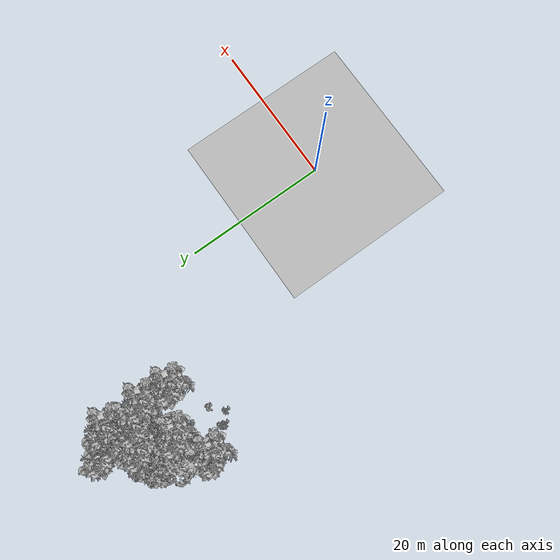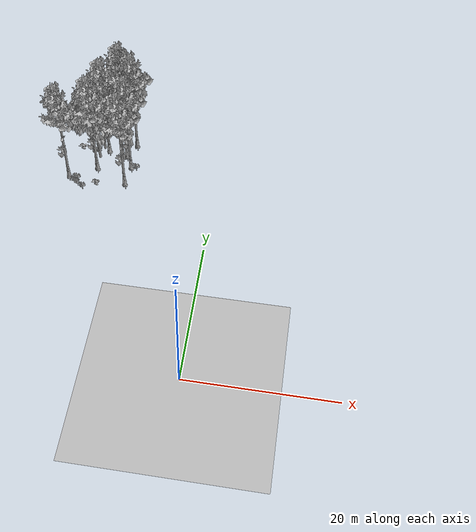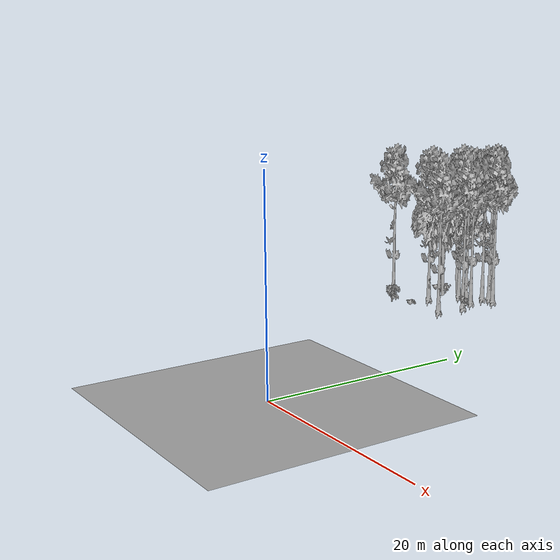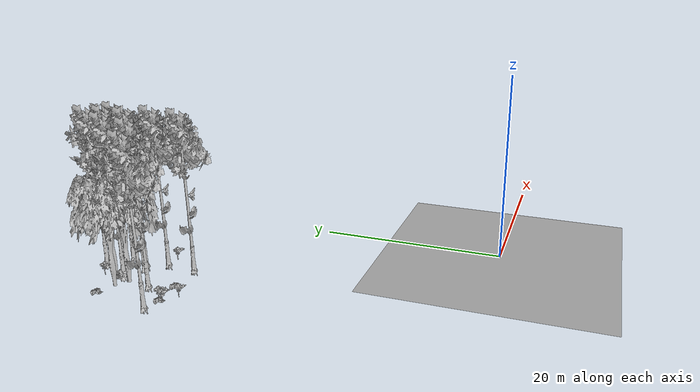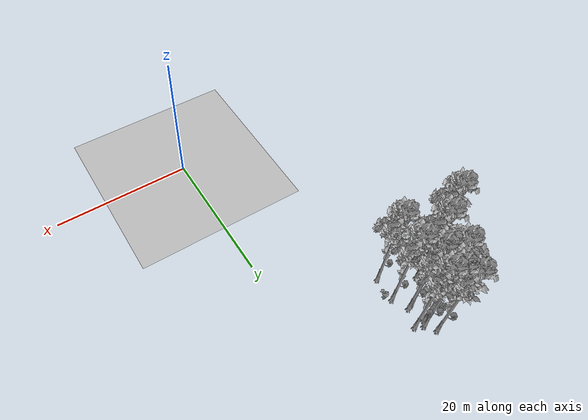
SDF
<sdf version="1.7">
 <world name="default">
  <model name="ground_plane">
   <static>1</static>
   <link name="link">
    <collision name="collision">
     <pose>-50 0 0 0 -0 0</pose>
     <geometry><plane><normal>0 0 1</normal><size>80 80</size></plane></geometry>
     <surface><contact><ode><min_depth>0.01</min_depth><max_vel>0</max_vel></ode></contact></surface>
    </collision>
    <visual name="grass">
     <cast_shadows>0</cast_shadows>
     <geometry>
      <mesh>
       <scale>0.46714285714285714 0.46714285714285714 0.1</scale>
       <uri>file://grass_plane/meshes/grass_plane.dae</uri>
      </mesh>
     </geometry>
    </visual>
   </link>
  </model>
  <model name="Tree 18">
   <static>1</static>
   <pose>-14.065529169427268 35.52857261855051 0 1.57079 -0 0</pose>
   <link name="link">
    <collision name="collision">
     <geometry><mesh><scale>3.5 5 3.5</scale><uri>model://tree_9/meshes/tree_9.obj</uri></mesh></geometry>
    </collision>
    <visual name="visual">
     <geometry><mesh><scale>3.5 5 3.5</scale><uri>model://tree_9/meshes/tree_9.obj</uri></mesh></geometry>
    </visual>
   </link>
  </model>
  <model name="Tree 36">
   <static>1</static>
   <pose>-15.152335132241337 39.67727176170672 0 1.57079 -0 0</pose>
   <link name="link">
    <collision name="collision">
     <geometry><mesh><scale>3.5 5 3.5</scale><uri>model://tree_9/meshes/tree_9.obj</uri></mesh></geometry>
    </collision>
    <visual name="visual">
     <geometry><mesh><scale>3.5 5 3.5</scale><uri>model://tree_9/meshes/tree_9.obj</uri></mesh></geometry>
    </visual>
   </link>
  </model>
  <model name="Tree 112">
   <static>1</static>
   <pose>-14.653838954451714 35.34452217381728 0 1.57079 -0 0</pose>
   <link name="link">
    <collision name="collision">
     <geometry><mesh><scale>3.5 5 3.5</scale><uri>model://tree_9/meshes/tree_9.obj</uri></mesh></geometry>
    </collision>
    <visual name="visual">
     <geometry><mesh><scale>3.5 5 3.5</scale><uri>model://tree_9/meshes/tree_9.obj</uri></mesh></geometry>
    </visual>
   </link>
  </model>
  <model name="Tree 133">
   <static>1</static>
   <pose>-13.307824692945683 30.140929043435392 0 1.57079 -0 0</pose>
   <link name="link">
    <collision name="collision">
     <geometry><mesh><scale>3.5 5 3.5</scale><uri>model://tree_9/meshes/tree_9.obj</uri></mesh></geometry>
    </collision>
    <visual name="visual">
     <geometry><mesh><scale>3.5 5 3.5</scale><uri>model://tree_9/meshes/tree_9.obj</uri></mesh></geometry>
    </visual>
   </link>
  </model>
  <model name="Tree 151">
   <static>1</static>
   <pose>-17.737539683027396 36.591564720760005 0 1.57079 -0 0</pose>
   <link name="link">
    <collision name="collision">
     <geometry><mesh><scale>3.5 5 3.5</scale><uri>model://tree_2/meshes/tree_2.obj</uri></mesh></geometry>
    </collision>
    <visual name="visual">
     <geometry><mesh><scale>3.5 5 3.5</scale><uri>model://tree_2/meshes/tree_2.obj</uri></mesh></geometry>
    </visual>
   </link>
  </model>
  <model name="Tree 155">
   <static>1</static>
   <pose>-14.65893704072171 37.7937850277693 0 1.57079 -0 0</pose>
   <link name="link">
    <collision name="collision">
     <geometry><mesh><scale>3.5 5 3.5</scale><uri>model://tree_9/meshes/tree_9.obj</uri></mesh></geometry>
    </collision>
    <visual name="visual">
     <geometry><mesh><scale>3.5 5 3.5</scale><uri>model://tree_9/meshes/tree_9.obj</uri></mesh></geometry>
    </visual>
   </link>
  </model>
  <model name="Tree 179">
   <static>1</static>
   <pose>-19.27175105072057 35.556196000599684 0 1.57079 -0 0</pose>
   <link name="link">
    <collision name="collision">
     <geometry><mesh><scale>3.5 5 3.5</scale><uri>model://tree_2/meshes/tree_2.obj</uri></mesh></geometry>
    </collision>
    <visual name="visual">
     <geometry><mesh><scale>3.5 5 3.5</scale><uri>model://tree_2/meshes/tree_2.obj</uri></mesh></geometry>
    </visual>
   </link>
  </model>
  <model name="Tree 181">
   <static>1</static>
   <pose>-13.041160947893289 33.444721932571326 0 1.57079 -0 0</pose>
   <link name="link">
    <collision name="collision">
     <geometry><mesh><scale>3.5 5 3.5</scale><uri>model://tree_9/meshes/tree_9.obj</uri></mesh></geometry>
    </collision>
    <visual name="visual">
     <geometry><mesh><scale>3.5 5 3.5</scale><uri>model://tree_9/meshes/tree_9.obj</uri></mesh></geometry>
    </visual>
   </link>
  </model>
  <model name="Tree 305">
   <static>1</static>
   <pose>-16.921087323523448 36.23932530980446 0 1.57079 -0 0</pose>
   <link name="link">
    <collision name="collision">
     <geometry><mesh><scale>3.5 5 3.5</scale><uri>model://tree_9/meshes/tree_9.obj</uri></mesh></geometry>
    </collision>
    <visual name="visual">
     <geometry><mesh><scale>3.5 5 3.5</scale><uri>model://tree_9/meshes/tree_9.obj</uri></mesh></geometry>
    </visual>
   </link>
  </model>
  <model name="Tree 351">
   <static>1</static>
   <pose>-21.713462580800375 30.40242384521804 0 1.57079 -0 0</pose>
   <link name="link">
    <collision name="collision">
     <geometry><mesh><scale>3.5 5 3.5</scale><uri>model://tree_9/meshes/tree_9.obj</uri></mesh></geometry>
    </collision>
    <visual name="visual">
     <geometry><mesh><scale>3.5 5 3.5</scale><uri>model://tree_9/meshes/tree_9.obj</uri></mesh></geometry>
    </visual>
   </link>
  </model>
  <model name="Tree 489">
   <static>1</static>
   <pose>-13.008379067946638 37.908707048524676 0 1.57079 -0 0</pose>
   <link name="link">
    <collision name="collision">
     <geometry><mesh><scale>3.5 5 3.5</scale><uri>model://tree_9/meshes/tree_9.obj</uri></mesh></geometry>
    </collision>
    <visual name="visual">
     <geometry><mesh><scale>3.5 5 3.5</scale><uri>model://tree_9/meshes/tree_9.obj</uri></mesh></geometry>
    </visual>
   </link>
  </model>
  <model name="Tree 503">
   <static>1</static>
   <pose>-17.94308139464814 32.56608983895751 0 1.57079 -0 0</pose>
   <link name="link">
    <collision name="collision">
     <geometry><mesh><scale>3.5 5 3.5</scale><uri>model://tree_9/meshes/tree_9.obj</uri></mesh></geometry>
    </collision>
    <visual name="visual">
     <geometry><mesh><scale>3.5 5 3.5</scale><uri>model://tree_9/meshes/tree_9.obj</uri></mesh></geometry>
    </visual>
   </link>
  </model>
  <model name="Tree 522">
   <static>1</static>
   <pose>-18.07945866088222 34.7016368237082 0 1.57079 -0 0</pose>
   <link name="link">
    <collision name="collision">
     <geometry><mesh><scale>3.5 5 3.5</scale><uri>model://tree_2/meshes/tree_2.obj</uri></mesh></geometry>
    </collision>
    <visual name="visual">
     <geometry><mesh><scale>3.5 5 3.5</scale><uri>model://tree_2/meshes/tree_2.obj</uri></mesh></geometry>
    </visual>
   </link>
  </model>
  <model name="Tree 639">
   <static>1</static>
   <pose>-14.156703565931696 38.39103749100374 0 1.57079 -0 0</pose>
   <link name="link">
    <collision name="collision">
     <geometry><mesh><scale>3.5 5 3.5</scale><uri>model://tree_9/meshes/tree_9.obj</uri></mesh></geometry>
    </collision>
    <visual name="visual">
     <geometry><mesh><scale>3.5 5 3.5</scale><uri>model://tree_9/meshes/tree_9.obj</uri></mesh></geometry>
    </visual>
   </link>
  </model>
  <model name="Bush 15">
   <static>1</static>
   <pose>-20.37944899060818 29.167738772505572 0 1.57079 -0 0</pose>
   <link name="link">
    <collision name="collision">
     <geometry><mesh><scale>2 2 2</scale><uri>model://bush_5/meshes/bush_5.obj</uri></mesh></geometry>
     <surface><contact><collide_without_contact>false</collide_without_contact></contact></surface>
    </collision>
    <visual name="visual">
     <geometry><mesh><scale>2 2 2</scale><uri>model://bush_5/meshes/bush_5.obj</uri></mesh></geometry>
    </visual>
   </link>
  </model>
  <model name="Bush 93">
   <static>1</static>
   <pose>-20.523361696073895 29.53006608919908 0 1.57079 -0 0</pose>
   <link name="link">
    <collision name="collision">
     <geometry><mesh><scale>2 2 2</scale><uri>model://bush_2/meshes/bush_2.obj</uri></mesh></geometry>
     <surface><contact><collide_without_contact>false</collide_without_contact></contact></surface>
    </collision>
    <visual name="visual">
     <geometry><mesh><scale>2 2 2</scale><uri>model://bush_2/meshes/bush_2.obj</uri></mesh></geometry>
    </visual>
   </link>
  </model>
  <model name="Bush 108">
   <static>1</static>
   <pose>-12.079518952735551 32.87177872362915 0 1.57079 -0 0</pose>
   <link name="link">
    <collision name="collision">
     <geometry><mesh><scale>2 2 2</scale><uri>model://bush_5/meshes/bush_5.obj</uri></mesh></geometry>
     <surface><contact><collide_without_contact>false</collide_without_contact></contact></surface>
    </collision>
    <visual name="visual">
     <geometry><mesh><scale>2 2 2</scale><uri>model://bush_5/meshes/bush_5.obj</uri></mesh></geometry>
    </visual>
   </link>
  </model>
  <model name="Bush 205">
   <static>1</static>
   <pose>-17.580791975384145 29.680375088145297 0 1.57079 -0 0</pose>
   <link name="link">
    <collision name="collision">
     <geometry><mesh><scale>2 2 2</scale><uri>model://bush_2/meshes/bush_2.obj</uri></mesh></geometry>
     <surface><contact><collide_without_contact>false</collide_without_contact></contact></surface>
    </collision>
    <visual name="visual">
     <geometry><mesh><scale>2 2 2</scale><uri>model://bush_2/meshes/bush_2.obj</uri></mesh></geometry>
    </visual>
   </link>
  </model>
  <model name="Bush 285">
   <static>1</static>
   <pose>-21.08601941055201 36.36580696548789 0 1.57079 -0 0</pose>
   <link name="link">
    <collision name="collision">
     <geometry><mesh><scale>2 2 2</scale><uri>model://bush_2/meshes/bush_2.obj</uri></mesh></geometry>
     <surface><contact><collide_without_contact>false</collide_without_contact></contact></surface>
    </collision>
    <visual name="visual">
     <geometry><mesh><scale>2 2 2</scale><uri>model://bush_2/meshes/bush_2.obj</uri></mesh></geometry>
    </visual>
   </link>
  </model>
  <model name="Bush 361">
   <static>1</static>
   <pose>-17.518846080482067 38.05507677510904 0 1.57079 -0 0</pose>
   <link name="link">
    <collision name="collision">
     <geometry><mesh><scale>2 2 2</scale><uri>model://bush_5/meshes/bush_5.obj</uri></mesh></geometry>
     <surface><contact><collide_without_contact>false</collide_without_contact></contact></surface>
    </collision>
    <visual name="visual">
     <geometry><mesh><scale>2 2 2</scale><uri>model://bush_5/meshes/bush_5.obj</uri></mesh></geometry>
    </visual>
   </link>
  </model>
  <model name="Bush 527">
   <static>1</static>
   <pose>-19.129122116588363 28.165030398408163 0 1.57079 -0 0</pose>
   <link name="link">
    <collision name="collision">
     <geometry><mesh><scale>2 2 2</scale><uri>model://bush_5/meshes/bush_5.obj</uri></mesh></geometry>
     <surface><contact><collide_without_contact>false</collide_without_contact></contact></surface>
    </collision>
    <visual name="visual">
     <geometry><mesh><scale>2 2 2</scale><uri>model://bush_5/meshes/bush_5.obj</uri></mesh></geometry>
    </visual>
   </link>
  </model>
  <model name="Bush 605">
   <static>1</static>
   <pose>-20.229522041155754 29.685322604515974 0 1.57079 -0 0</pose>
   <link name="link">
    <collision name="collision">
     <geometry><mesh><scale>2 2 2</scale><uri>model://bush_5/meshes/bush_5.obj</uri></mesh></geometry>
     <surface><contact><collide_without_contact>false</collide_without_contact></contact></surface>
    </collision>
    <visual name="visual">
     <geometry><mesh><scale>2 2 2</scale><uri>model://bush_5/meshes/bush_5.obj</uri></mesh></geometry>
    </visual>
   </link>
  </model>
  <model name="Bush 616">
   <static>1</static>
   <pose>-18.34304461382097 35.446061450782224 0 1.57079 -0 0</pose>
   <link name="link">
    <collision name="collision">
     <geometry><mesh><scale>2 2 2</scale><uri>model://bush_0/meshes/bush_0.obj</uri></mesh></geometry>
     <surface><contact><collide_without_contact>false</collide_without_contact></contact></surface>
    </collision>
    <visual name="visual">
     <geometry><mesh><scale>2 2 2</scale><uri>model://bush_0/meshes/bush_0.obj</uri></mesh></geometry>
    </visual>
   </link>
  </model>
 </world>
</sdf>
